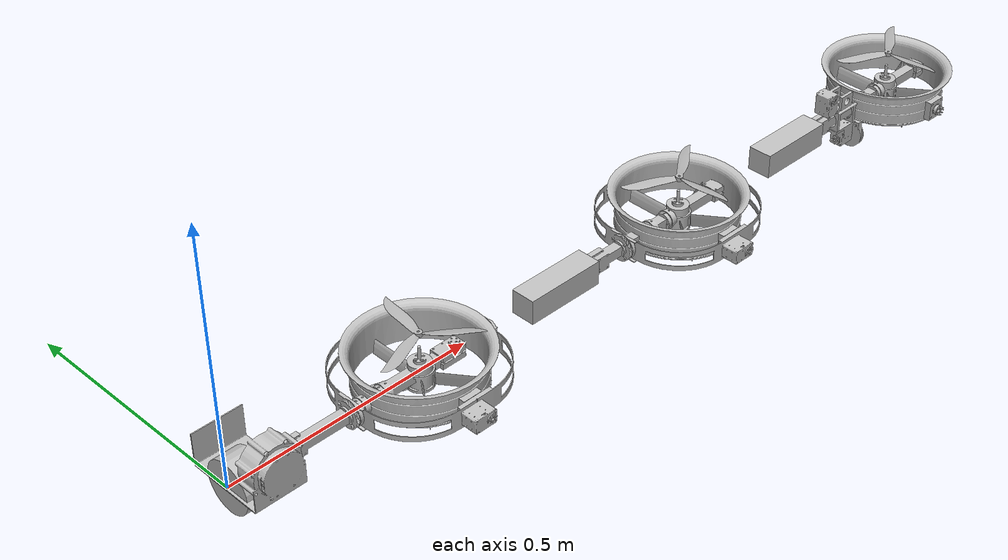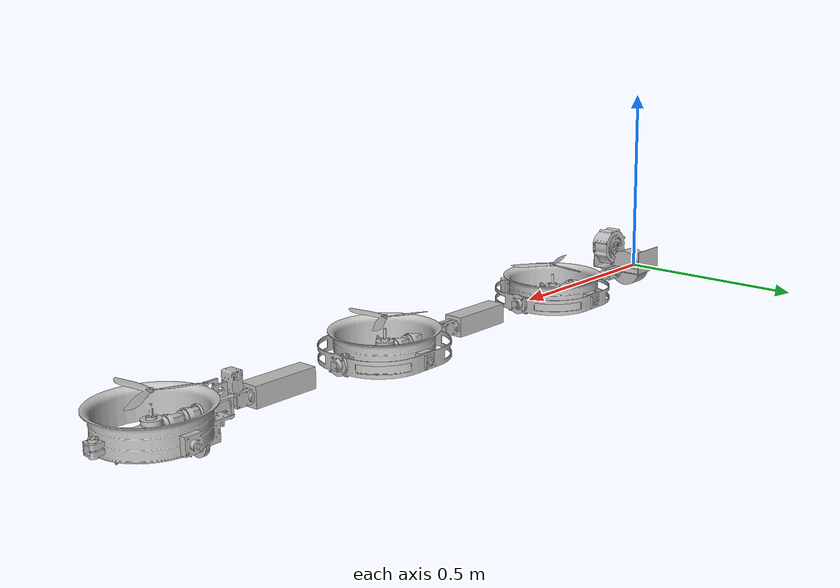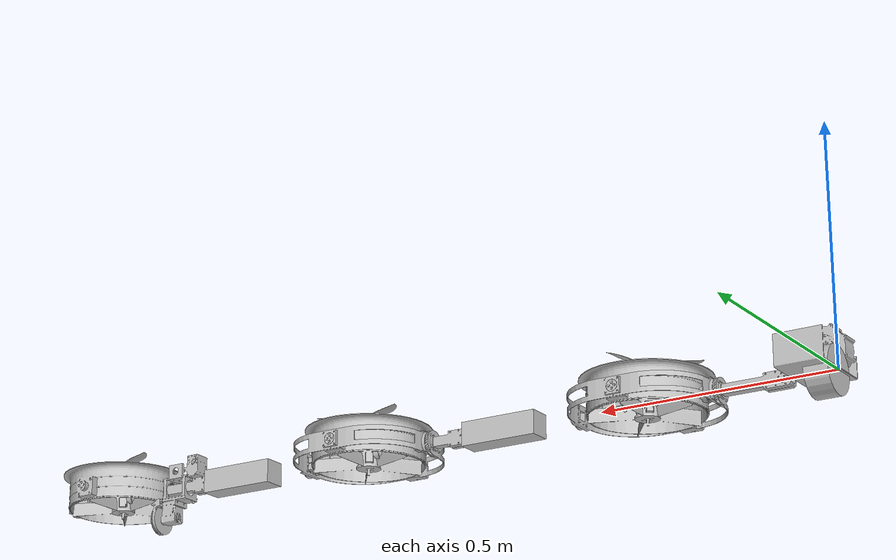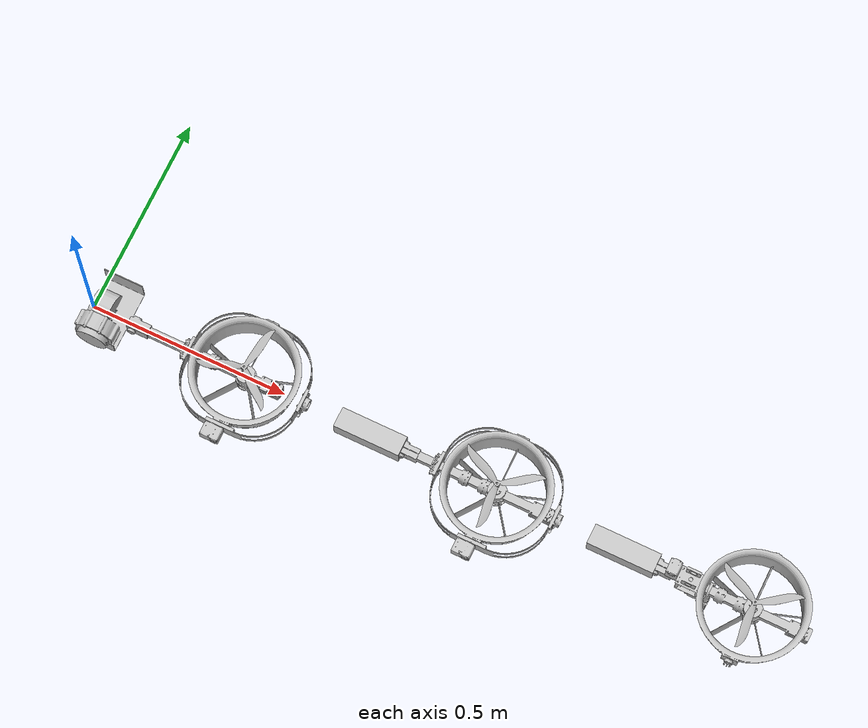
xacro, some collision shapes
<?xml version="1.0" ?>
<robot name="dynarm" xmlns:xacro="http://www.ros.org/wiki/xacro">
  <link name="link0_roll">
    <visual>
      <origin xyz="0 0 0" rpy="0 0 0"/>
      <geometry>
        <mesh filename="package://dynarm/meshes/v1/link0_roll.STL"/>
      </geometry>
      <material name="">
        <color rgba="0.752941176470588 0.752941176470588 0.752941176470588 1"/>
      </material>
    </visual>
    <collision>
      <origin xyz="0.025 0 0" rpy="0 ${pi / 2} 0"/>
      <geometry>
        <cylinder length="0.05" radius="0.05"/>
      </geometry>
    </collision>
    <inertial>
      <mass value="1.0761005"/>
      <origin xyz="0.01809388 -1.734e-05 4.966e-05" rpy="0 0 0"/>
      <inertia ixx="0.00184799" ixy="-6.1e-06" ixz="-9.4e-07" iyy="0.00117349" iyz="6.4e-07" izz="0.00140159"/>
    </inertial>
  </link>
  <link name="link0_pitch">
    <visual>
      <origin xyz="0 0 0" rpy="0 0 0"/>
      <geometry>
        <mesh filename="package://dynarm/meshes/v1/link0_pitch.STL"/>
      </geometry>
      <material name="">
        <color rgba="0.752941176470588 0.752941176470588 0.752941176470588 1"/>
      </material>
    </visual>
    <collision>
      <origin xyz="0.062 0 0" rpy="${pi / 2} 0 0"/>
      <geometry>
        <cylinder length="0.05" radius="0.05"/>
      </geometry>
    </collision>
    <inertial>
      <mass value="1.24295185"/>
      <origin xyz="0.05712269 0.0040978 -3.125e-05" rpy="0 0 0"/>
      <inertia ixx="0.0013593" ixy="2.952e-05" ixz="-1.28e-06" iyy="0.00198606" iyz="-6.2e-07" izz="0.00160949"/>
    </inertial>
  </link>
  <joint name="joint0_roll" type="revolute">
    <origin xyz="0.045 0 0" rpy="0 0 0"/>
    <parent link="link0_roll"/>
    <child link="link0_pitch"/>
    <axis xyz="1 0 0"/>
    <limit lower="-1.57" upper="1.57" effort="60" velocity="18.0"/>
    <dynamics damping="0.9" friction="0.7"/>
  </joint>
  <link name="link1">
    <visual>
      <origin xyz="0 0 0" rpy="0 0 0"/>
      <geometry>
        <mesh filename="package://dynarm/meshes/v1/link1.STL"/>
      </geometry>
      <material name="">
        <color rgba="0.752941176470588 0.752941176470588 0.752941176470588 1"/>
      </material>
    </visual>
    <collision>
      <origin xyz="0.292 0 0" rpy="0 0 0"/>
      <geometry>
        <cylinder length="0.05" radius="0.2"/>
      </geometry>
    </collision>
    <collision>
      <origin xyz="0.137 0 -0.05" rpy="0 0 0"/>
      <geometry>
        <cylinder length="0.1" radius="0.01"/>
      </geometry>
    </collision>
    <collision>
      <origin xyz="0.447 0 -0.05" rpy="0 0 0"/>
      <geometry>
        <cylinder length="0.1" radius="0.01"/>
      </geometry>
    </collision>
    <inertial>
      <mass value="0.56565523"/>
      <origin xyz="0.23081982 0.00378886 -0.00900833" rpy="0 0 0"/>
      <inertia ixx="0.00391662" ixy="-0.00040125" ixz="-1.552e-05" iyy="0.02036552" iyz="1.678e-05" izz="0.02385785"/>
    </inertial>
  </link>
  <joint name="joint0_pitch" type="revolute">
    <origin xyz="0.062 0 0" rpy="0 0 0"/>
    <parent link="link0_pitch"/>
    <child link="link1"/>
    <axis xyz="0 1 0"/>
    <limit lower="-1.57" upper="1.57" effort="60" velocity="18.0"/>
    <dynamics damping="0.9" friction="0.7"/>
  </joint>
  <link name="gimbal1_roll_link">
    <visual>
      <origin xyz="0 0 0" rpy="0 0 0"/>
      <geometry>
        <mesh filename="package://dynarm/meshes/v1/gimbal1_roll_link.STL"/>
      </geometry>
      <material name="">
        <color rgba="0.752941176470588 0.752941176470588 0.752941176470588 1"/>
      </material>
    </visual>
    <inertial>
      <mass value="0.27208249"/>
      <origin xyz="0.14382598 -0.0417515 2.28e-06" rpy="0 0 0"/>
      <inertia ixx="0.0026964" ixy="-3.815e-05" ixz="0.0" iyy="0.00295645" iyz="-8e-08" izz="0.00557011"/>
    </inertial>
  </link>
  <joint name="gimbal1_roll" type="revolute">
    <origin xyz="0.1365 0 0" rpy="0 0 0"/>
    <parent link="link1"/>
    <child link="gimbal1_roll_link"/>
    <axis xyz="1 0 0"/>
    <limit lower="-3.14" upper="3.14" effort="3" velocity="10.0"/>
    <dynamics damping="0.1" friction="0.0"/>
  </joint>
  <link name="gimbal1_pitch_link">
    <visual>
      <origin xyz="0 0 0" rpy="0 0 0"/>
      <geometry>
        <mesh filename="package://dynarm/meshes/v1/gimbal1_pitch_link.STL"/>
      </geometry>
      <material name="">
        <color rgba="0.752941176470588 0.752941176470588 0.752941176470588 1"/>
      </material>
    </visual>
    <collision>
      <origin xyz="0 0 0" rpy="0 0 0"/>
      <geometry>
        <cylinder length="0.05" radius="0.1"/>
      </geometry>
    </collision>
    <inertial>
      <mass value="0.45023026"/>
      <origin xyz="-8.221e-05 -0.000402 0.0018275" rpy="0 0 0"/>
      <inertia ixx="0.00190521" ixy="-8e-07" ixz="8e-07" iyy="0.0010654" iyz="-6.7e-07" izz="0.00264526"/>
    </inertial>
  </link>
  <joint name="gimbal1_pitch" type="revolute">
    <origin xyz="0.156 0 0" rpy="0 0 0"/>
    <parent link="gimbal1_roll_link"/>
    <child link="gimbal1_pitch_link"/>
    <axis xyz="0 1 0"/>
    <limit lower="-3.14" upper="3.14" effort="3" velocity="10.0"/>
    <dynamics damping="0.1" friction="0.0"/>
  </joint>
  <link name="thrust1">
    <visual>
      <origin xyz="0 0 0" rpy="0 0 0"/>
      <geometry>
        <mesh filename="package://dynarm/meshes/v1/thrust1.STL"/>
      </geometry>
      <material name="">
        <color rgba="0.698039215686274 0.698039215686274 0.698039215686274 1"/>
      </material>
    </visual>
    <inertial>
      <mass value="0.014"/>
      <origin xyz="0.0 0.0 -0.00395854" rpy="0 0 0"/>
      <inertia ixx="2.162e-05" ixy="0.0" ixz="0.0" iyy="2.162e-05" iyz="0.0" izz="4.319e-05"/>
    </inertial>
  </link>
  <joint name="rotor1" type="continuous">
    <origin xyz="0 0 0.034" rpy="0 0 0"/>
    <parent link="gimbal1_pitch_link"/>
    <child link="thrust1"/>
    <axis xyz="0 0 1"/>
    <limit lower="7.1" upper="40.0" effort="100" velocity="0.5"/>
  </joint>
  <link name="joint_junction1">
    <visual>
      <origin xyz="0 0 0" rpy="0 0 0"/>
      <geometry>
        <mesh filename="package://dynarm/meshes/v1/joint_junction1.STL"/>
      </geometry>
      <material name="">
        <color rgba="0.752941176470588 0.752941176470588 0.752941176470588 1"/>
      </material>
    </visual>
    <collision>
      <origin xyz="0.0835 0 0" rpy="0 0 0"/>
      <geometry>
        <box size="0.167 0.05 0.05"/>
      </geometry>
    </collision>
    <inertial>
      <mass value="0.77591975"/>
      <origin xyz="0.08350022 -0.00154617 0.00154617" rpy="0 0 0"/>
      <inertia ixx="0.00050199" ixy="-4.044e-05" ixz="-4.044e-05" iyy="0.00169538" iyz="1.92e-06" izz="0.00169538"/>
    </inertial>
  </link>
  <joint name="joint1_yaw" type="revolute">
    <origin xyz="0.533 0 0" rpy="0 0 0"/>
    <parent link="link1"/>
    <child link="joint_junction1"/>
    <axis xyz="0 0 1"/>
    <limit lower="-1.57" upper="1.57" effort="20" velocity="7.0"/>
    <dynamics damping="0.9" friction="0.7"/>
  </joint>
  <link name="link2">
    <visual>
      <origin xyz="0 0 0" rpy="0 0 0"/>
      <geometry>
        <mesh filename="package://dynarm/meshes/v1/link2.STL"/>
      </geometry>
      <material name="">
        <color rgba="0.752941176470588 0.752941176470588 0.752941176470588 1"/>
      </material>
    </visual>
    <collision>
      <origin xyz="0.24 0 0" rpy="0 0 0"/>
      <geometry>
        <cylinder length="0.05" radius="0.2"/>
      </geometry>
    </collision>
    <collision>
      <origin xyz="0.085 0 -0.05" rpy="0 0 0"/>
      <geometry>
        <cylinder length="0.1" radius="0.01"/>
      </geometry>
    </collision>
    <collision>
      <origin xyz="0.395 0 -0.05" rpy="0 0 0"/>
      <geometry>
        <cylinder length="0.1" radius="0.01"/>
      </geometry>
    </collision>
    <inertial>
      <mass value="0.44767426"/>
      <origin xyz="0.23294712 -0.00010111 -0.0113824" rpy="0 0 0"/>
      <inertia ixx="0.00372484" ixy="5.561e-05" ixz="0.0002603" iyy="0.01389297" iyz="-3.05e-06" izz="0.0172719"/>
    </inertial>
  </link>
  <joint name="joint1_pitch" type="revolute">
    <origin xyz="0.167 0 0" rpy="0 0 0"/>
    <parent link="joint_junction1"/>
    <child link="link2"/>
    <axis xyz="0 1 0"/>
    <limit lower="-1.57" upper="1.57" effort="20" velocity="7.0"/>
    <dynamics damping="0.9" friction="0.7"/>
  </joint>
  <link name="gimbal2_roll_link">
    <visual>
      <origin xyz="0 0 0" rpy="0 0 0"/>
      <geometry>
        <mesh filename="package://dynarm/meshes/v1/gimbal2_roll_link.STL"/>
      </geometry>
      <material name="">
        <color rgba="0.752941176470588 0.752941176470588 0.752941176470588 1"/>
      </material>
    </visual>
    <inertial>
      <mass value="0.27208249"/>
      <origin xyz="0.14382598 -0.0417515 2.28e-06" rpy="0 0 0"/>
      <inertia ixx="0.0026964" ixy="-3.815e-05" ixz="0.0" iyy="0.00295645" iyz="-8e-08" izz="0.00557011"/>
    </inertial>
  </link>
  <joint name="gimbal2_roll" type="revolute">
    <origin xyz="0.0845 0 0" rpy="0 0 0"/>
    <parent link="link2"/>
    <child link="gimbal2_roll_link"/>
    <axis xyz="1 0 0"/>
    <limit lower="-3.14" upper="3.14" effort="3" velocity="10.0"/>
    <dynamics damping="0.1" friction="0.0"/>
  </joint>
  <link name="gimbal2_pitch_link">
    <visual>
      <origin xyz="0 0 0" rpy="0 0 0"/>
      <geometry>
        <mesh filename="package://dynarm/meshes/v1/gimbal2_pitch_link.STL"/>
      </geometry>
      <material name="">
        <color rgba="0.752941176470588 0.752941176470588 0.752941176470588 1"/>
      </material>
    </visual>
    <collision>
      <origin xyz="0 0 0" rpy="0 0 0"/>
      <geometry>
        <cylinder length="0.05" radius="0.1"/>
      </geometry>
    </collision>
    <inertial>
      <mass value="0.45023026"/>
      <origin xyz="-8.221e-05 -0.000402 0.0018275" rpy="0 0 0"/>
      <inertia ixx="0.00190521" ixy="-8e-07" ixz="8e-07" iyy="0.0010654" iyz="-6.7e-07" izz="0.00264526"/>
    </inertial>
  </link>
  <joint name="gimbal2_pitch" type="revolute">
    <origin xyz="0.156 0 0" rpy="0 0 0"/>
    <parent link="gimbal2_roll_link"/>
    <child link="gimbal2_pitch_link"/>
    <axis xyz="0 1 0"/>
    <limit lower="-3.14" upper="3.14" effort="3" velocity="10.0"/>
    <dynamics damping="0.1" friction="0.0"/>
  </joint>
  <link name="thrust2">
    <visual>
      <origin xyz="0 0 0" rpy="0 0 0"/>
      <geometry>
        <mesh filename="package://dynarm/meshes/v1/thrust2.STL"/>
      </geometry>
      <material name="">
        <color rgba="0.698039215686274 0.698039215686274 0.698039215686274 1"/>
      </material>
    </visual>
    <inertial>
      <mass value="0.014"/>
      <origin xyz="0.0 0.0 -0.00395854" rpy="0 0 0"/>
      <inertia ixx="2.162e-05" ixy="0.0" ixz="0.0" iyy="2.162e-05" iyz="0.0" izz="4.319e-05"/>
    </inertial>
  </link>
  <joint name="rotor2" type="continuous">
    <origin xyz="0 0 0.034" rpy="0 0 0"/>
    <parent link="gimbal2_pitch_link"/>
    <child link="thrust2"/>
    <axis xyz="0 0 -1"/>
    <limit lower="7.1" upper="40.0" effort="100" velocity="0.5"/>
  </joint>
  <link name="joint_junction2">
    <visual>
      <origin xyz="0 0 0" rpy="0 0 0"/>
      <geometry>
        <mesh filename="package://dynarm/meshes/v1/joint_junction2.STL"/>
      </geometry>
      <material name="">
        <color rgba="0.752941176470588 0.752941176470588 0.752941176470588 1"/>
      </material>
    </visual>
    <collision>
      <origin xyz="0.0835 0 0" rpy="0 0 0"/>
      <geometry>
        <box size="0.167 0.05 0.05"/>
      </geometry>
    </collision>
    <inertial>
      <mass value="0.77591975"/>
      <origin xyz="0.08350022 -0.00154617 0.00154617" rpy="0 0 0"/>
      <inertia ixx="0.00050199" ixy="-4.044e-05" ixz="-4.044e-05" iyy="0.00169538" iyz="1.92e-06" izz="0.00169538"/>
    </inertial>
  </link>
  <joint name="joint2_yaw" type="revolute">
    <origin xyz="0.481 0 0" rpy="0 0 0"/>
    <parent link="link2"/>
    <child link="joint_junction2"/>
    <axis xyz="0 0 1"/>
    <limit lower="-1.57" upper="1.57" effort="20" velocity="7.0"/>
    <dynamics damping="0.9" friction="0.7"/>
  </joint>
  <link name="link3">
    <visual>
      <origin xyz="0 0 0" rpy="0 0 0"/>
      <geometry>
        <mesh filename="package://dynarm/meshes/v1/link3.STL"/>
      </geometry>
      <material name="">
        <color rgba="0.752941176470588 0.752941176470588 0.752941176470588 1"/>
      </material>
    </visual>
    <collision>
      <origin xyz="0.24 0 0" rpy="0 0 0"/>
      <geometry>
        <cylinder length="0.05" radius="0.2"/>
      </geometry>
    </collision>
    <collision>
      <origin xyz="0.085 0 -0.05" rpy="0 0 0"/>
      <geometry>
        <cylinder length="0.1" radius="0.01"/>
      </geometry>
    </collision>
    <collision>
      <origin xyz="0.395 0 -0.05" rpy="0 0 0"/>
      <geometry>
        <cylinder length="0.1" radius="0.01"/>
      </geometry>
    </collision>
    <inertial>
      <mass value="0.41309537"/>
      <origin xyz="0.21249397 -0.00010957 -0.01269557" rpy="0 0 0"/>
      <inertia ixx="0.00370055" ixy="5.468e-05" ixz="0.00011547" iyy="0.0116295" iyz="-3.11e-06" izz="0.01502479"/>
    </inertial>
  </link>
  <joint name="joint2_pitch" type="revolute">
    <origin xyz="0.167 0 0" rpy="0 0 0"/>
    <parent link="joint_junction2"/>
    <child link="link3"/>
    <axis xyz="0 1 0"/>
    <limit lower="-1.57" upper="1.57" effort="20" velocity="7.0"/>
    <dynamics damping="0.9" friction="0.7"/>
  </joint>
  <link name="gimbal3_roll_link">
    <visual>
      <origin xyz="0 0 0" rpy="0 0 0"/>
      <geometry>
        <mesh filename="package://dynarm/meshes/v1/gimbal3_roll_link.STL"/>
      </geometry>
      <material name="">
        <color rgba="0.752941176470588 0.752941176470588 0.752941176470588 1"/>
      </material>
    </visual>
    <inertial>
      <mass value="0.27208249"/>
      <origin xyz="0.14382598 -0.0417515 2.28e-06" rpy="0 0 0"/>
      <inertia ixx="0.0026964" ixy="-3.815e-05" ixz="0.0" iyy="0.00295645" iyz="-8e-08" izz="0.00557011"/>
    </inertial>
  </link>
  <joint name="gimbal3_roll" type="revolute">
    <origin xyz="0.0845 0 0" rpy="0 0 0"/>
    <parent link="link3"/>
    <child link="gimbal3_roll_link"/>
    <axis xyz="1 0 0"/>
    <limit lower="-3.14" upper="3.14" effort="3" velocity="10.0"/>
    <dynamics damping="0.1" friction="0.0"/>
  </joint>
  <link name="gimbal3_pitch_link">
    <visual>
      <origin xyz="0 0 0" rpy="0 0 0"/>
      <geometry>
        <mesh filename="package://dynarm/meshes/v1/gimbal3_pitch_link.STL"/>
      </geometry>
      <material name="">
        <color rgba="0.752941176470588 0.752941176470588 0.752941176470588 1"/>
      </material>
    </visual>
    <collision>
      <origin xyz="0 0 0" rpy="0 0 0"/>
      <geometry>
        <cylinder length="0.05" radius="0.1"/>
      </geometry>
    </collision>
    <inertial>
      <mass value="0.45023026"/>
      <origin xyz="-8.221e-05 -0.00040201 0.0018275" rpy="0 0 0"/>
      <inertia ixx="0.00190521" ixy="-8e-07" ixz="8e-07" iyy="0.0010654" iyz="-6.7e-07" izz="0.00264526"/>
    </inertial>
  </link>
  <joint name="gimbal3_pitch" type="revolute">
    <origin xyz="0.156 0 0" rpy="0 0 0"/>
    <parent link="gimbal3_roll_link"/>
    <child link="gimbal3_pitch_link"/>
    <axis xyz="0 1 0"/>
    <limit lower="-3.14" upper="3.14" effort="3" velocity="10.0"/>
    <dynamics damping="0.1" friction="0.0"/>
  </joint>
  <link name="thrust3">
    <visual>
      <origin xyz="0 0 0" rpy="0 0 0"/>
      <geometry>
        <mesh filename="package://dynarm/meshes/v1/thrust3.STL"/>
      </geometry>
      <material name="">
        <color rgba="0.698039215686274 0.698039215686274 0.698039215686274 1"/>
      </material>
    </visual>
    <inertial>
      <mass value="0.014"/>
      <origin xyz="0.0 0.0 -0.00395854" rpy="0 0 0"/>
      <inertia ixx="2.162e-05" ixy="0.0" ixz="0.0" iyy="2.162e-05" iyz="0.0" izz="4.319e-05"/>
    </inertial>
  </link>
  <joint name="rotor3" type="continuous">
    <origin xyz="0 0 0.034" rpy="0 0 0"/>
    <parent link="gimbal3_pitch_link"/>
    <child link="thrust3"/>
    <axis xyz="0 0 1"/>
    <limit lower="7.1" upper="40.0" effort="100" velocity="0.5"/>
  </joint>
</robot>
